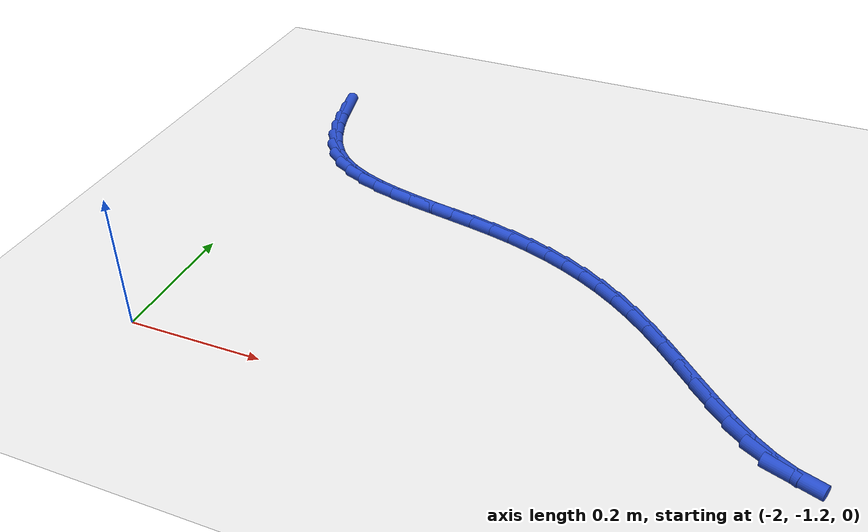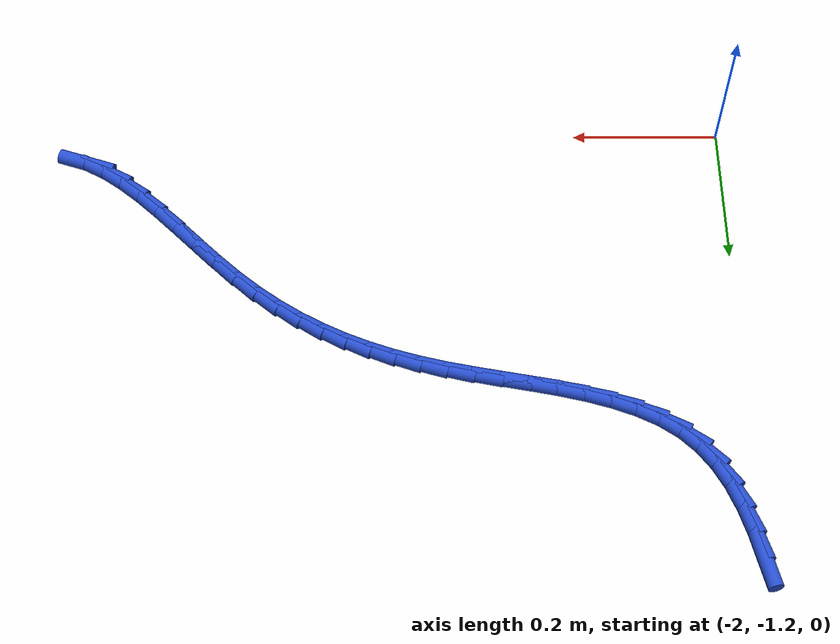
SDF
<sdf version="1.6">
 <world name="default">
  <model name="ground_plane">
   <static>1</static>
   <link name="link">
    <collision name="collision">
     <geometry><plane><normal>0 0 1</normal><size>100 100</size></plane></geometry>
     <surface><friction><ode><mu>100</mu><mu2>50</mu2></ode></friction></surface>
    </collision>
    <visual name="visual">
     <cast_shadows>0</cast_shadows>
     <geometry><plane><normal>0 0 1</normal><size>100 100</size></plane></geometry>
     <material>
      <script><uri>file://media/materials/scripts/gazebo.material</uri><name>Gazebo/WhiteGlow</name></script>
     </material>
    </visual>
   </link>
  </model>
  <model name="line">
   <link name="link_117">
    <pose>-1.997772447449501 -0.5537040835955556 0.01 0 1.57 -1.345155733256852</pose>
    <collision name="collision">
     <geometry><cylinder><radius>0.01</radius><length>0.08</length></cylinder></geometry>
    </collision>
    <visual name="visual">
     <material>
      <script><name>Gazebo/Blue</name><uri>file://media/materials/scripts/gazebo.material</uri></script>
     </material>
     <geometry><cylinder><radius>0.01</radius><length>0.08</length></cylinder></geometry>
    </visual>
   </link>
   <link name="link_118">
    <pose>-1.9897355834583756 -0.5887155290881961 0.01 0 1.57 -1.2807523820147915</pose>
    <collision name="collision">
     <geometry><cylinder><radius>0.01</radius><length>0.08</length></cylinder></geometry>
    </collision>
    <visual name="visual">
     <material>
      <script><name>Gazebo/Blue</name><uri>file://media/materials/scripts/gazebo.material</uri></script>
     </material>
     <geometry><cylinder><radius>0.01</radius><length>0.08</length></cylinder></geometry>
    </visual>
   </link>
   <link name="link_119">
    <pose>-1.979806153467671 -0.6219843373821023 0.01 0 1.57 -1.1946249049794326</pose>
    <collision name="collision">
     <geometry><cylinder><radius>0.01</radius><length>0.08</length></cylinder></geometry>
    </collision>
    <visual name="visual">
     <material>
      <script><name>Gazebo/Blue</name><uri>file://media/materials/scripts/gazebo.material</uri></script>
     </material>
     <geometry><cylinder><radius>0.01</radius><length>0.08</length></cylinder></geometry>
    </visual>
   </link>
   <link name="link_120">
    <pose>-1.9675458245919661 -0.6530247065206067 0.01 0 1.57 -1.0829772357372502</pose>
    <collision name="collision">
     <geometry><cylinder><radius>0.01</radius><length>0.08</length></cylinder></geometry>
    </collision>
    <visual name="visual">
     <material>
      <script><name>Gazebo/Blue</name><uri>file://media/materials/scripts/gazebo.material</uri></script>
     </material>
     <geometry><cylinder><radius>0.01</radius><length>0.08</length></cylinder></geometry>
    </visual>
   </link>
   <link name="link_121">
    <pose>-1.9525162639458398 -0.6813508345470413 0.01 0 1.57 -0.9429479836588368</pose>
    <collision name="collision">
     <geometry><cylinder><radius>0.01</radius><length>0.08</length></cylinder></geometry>
    </collision>
    <visual name="visual">
     <material>
      <script><name>Gazebo/Blue</name><uri>file://media/materials/scripts/gazebo.material</uri></script>
     </material>
     <geometry><cylinder><radius>0.01</radius><length>0.08</length></cylinder></geometry>
    </visual>
   </link>
   <link name="link_122">
    <pose>-1.9342791386438711 -0.7064769195047385 0.01 0 1.57 -0.7757064906332745</pose>
    <collision name="collision">
     <geometry><cylinder><radius>0.01</radius><length>0.08</length></cylinder></geometry>
    </collision>
    <visual name="visual">
     <material>
      <script><name>Gazebo/Blue</name><uri>file://media/materials/scripts/gazebo.material</uri></script>
     </material>
     <geometry><cylinder><radius>0.01</radius><length>0.08</length></cylinder></geometry>
    </visual>
   </link>
   <link name="link_123">
    <pose>-1.912407251873579 -0.7279289122649892 0.01 0 1.57 -0.6073591056954469</pose>
    <collision name="collision">
     <geometry><cylinder><radius>0.01</radius><length>0.08</length></cylinder></geometry>
    </collision>
    <visual name="visual">
     <material>
      <script><name>Gazebo/Blue</name><uri>file://media/materials/scripts/gazebo.material</uri></script>
     </material>
     <geometry><cylinder><radius>0.01</radius><length>0.08</length></cylinder></geometry>
    </visual>
   </link>
   <link name="link_124">
    <pose>-1.8868847722521176 -0.7456669119979239 0.01 0 1.57 -0.469266980880426</pose>
    <collision name="collision">
     <geometry><cylinder><radius>0.01</radius><length>0.08</length></cylinder></geometry>
    </collision>
    <visual name="visual">
     <material>
      <script><name>Gazebo/Blue</name><uri>file://media/materials/scripts/gazebo.material</uri></script>
     </material>
     <geometry><cylinder><radius>0.01</radius><length>0.08</length></cylinder></geometry>
    </visual>
   </link>
   <link name="link_125">
    <pose>-1.8582181038203802 -0.760202176538149 0.01 0 1.57 -0.363048559541694</pose>
    <collision name="collision">
     <geometry><cylinder><radius>0.01</radius><length>0.08</length></cylinder></geometry>
    </collision>
    <visual name="visual">
     <material>
      <script><name>Gazebo/Blue</name><uri>file://media/materials/scripts/gazebo.material</uri></script>
     </material>
     <geometry><cylinder><radius>0.01</radius><length>0.08</length></cylinder></geometry>
    </visual>
   </link>
   <link name="link_126">
    <pose>-1.8269473572872568 -0.772081537182493 0.01 0 1.57 -0.285111338385013</pose>
    <collision name="collision">
     <geometry><cylinder><radius>0.01</radius><length>0.08</length></cylinder></geometry>
    </collision>
    <visual name="visual">
     <material>
      <script><name>Gazebo/Blue</name><uri>file://media/materials/scripts/gazebo.material</uri></script>
     </material>
     <geometry><cylinder><radius>0.01</radius><length>0.08</length></cylinder></geometry>
    </visual>
   </link>
   <link name="link_127">
    <pose>-1.7936126433616373 -0.781851825227784 0.01 0 1.57 -0.231254574492611</pose>
    <collision name="collision">
     <geometry><cylinder><radius>0.01</radius><length>0.08</length></cylinder></geometry>
    </collision>
    <visual name="visual">
     <material>
      <script><name>Gazebo/Blue</name><uri>file://media/materials/scripts/gazebo.material</uri></script>
     </material>
     <geometry><cylinder><radius>0.01</radius><length>0.08</length></cylinder></geometry>
    </visual>
   </link>
   <link name="link_128">
    <pose>-1.7587540727524114 -0.79005987197085 0.01 0 1.57 -0.19804397375213975</pose>
    <collision name="collision">
     <geometry><cylinder><radius>0.01</radius><length>0.08</length></cylinder></geometry>
    </collision>
    <visual name="visual">
     <material>
      <script><name>Gazebo/Blue</name><uri>file://media/materials/scripts/gazebo.material</uri></script>
     </material>
     <geometry><cylinder><radius>0.01</radius><length>0.08</length></cylinder></geometry>
    </visual>
   </link>
   <link name="link_129">
    <pose>-1.7229117561684688 -0.7972525087085195 0.01 0 1.57 -0.18322904749051375</pose>
    <collision name="collision">
     <geometry><cylinder><radius>0.01</radius><length>0.08</length></cylinder></geometry>
    </collision>
    <visual name="visual">
     <material>
      <script><name>Gazebo/Blue</name><uri>file://media/materials/scripts/gazebo.material</uri></script>
     </material>
     <geometry><cylinder><radius>0.01</radius><length>0.08</length></cylinder></geometry>
    </visual>
   </link>
   <link name="link_130">
    <pose>-1.6866258043186997 -0.8039765667376207 0.01 0 1.57 -0.1857959369290433</pose>
    <collision name="collision">
     <geometry><cylinder><radius>0.01</radius><length>0.08</length></cylinder></geometry>
    </collision>
    <visual name="visual">
     <material>
      <script><name>Gazebo/Blue</name><uri>file://media/materials/scripts/gazebo.material</uri></script>
     </material>
     <geometry><cylinder><radius>0.01</radius><length>0.08</length></cylinder></geometry>
    </visual>
   </link>
   <link name="link_131">
    <pose>-1.650436327911994 -0.810778877354982 0.01 0 1.57 -0.20594908778024665</pose>
    <collision name="collision">
     <geometry><cylinder><radius>0.01</radius><length>0.08</length></cylinder></geometry>
    </collision>
    <visual name="visual">
     <material>
      <script><name>Gazebo/Blue</name><uri>file://media/materials/scripts/gazebo.material</uri></script>
     </material>
     <geometry><cylinder><radius>0.01</radius><length>0.08</length></cylinder></geometry>
    </visual>
   </link>
   <link name="link_132">
    <pose>-1.6148834376572425 -0.8182062718574317 0.01 0 1.57 -0.24378057751574592</pose>
    <collision name="collision">
     <geometry><cylinder><radius>0.01</radius><length>0.08</length></cylinder></geometry>
    </collision>
    <visual name="visual">
     <material>
      <script><name>Gazebo/Blue</name><uri>file://media/materials/scripts/gazebo.material</uri></script>
     </material>
     <geometry><cylinder><radius>0.01</radius><length>0.08</length></cylinder></geometry>
    </visual>
   </link>
   <link name="link_133">
    <pose>-1.5804511033791901 -0.826770537340912 0.01 0 1.57 -0.2910664446072185</pose>
    <collision name="collision">
     <geometry><cylinder><radius>0.01</radius><length>0.08</length></cylinder></geometry>
    </collision>
    <visual name="visual">
     <material>
      <script><name>Gazebo/Blue</name><uri>file://media/materials/scripts/gazebo.material</uri></script>
     </material>
     <geometry><cylinder><radius>0.01</radius><length>0.08</length></cylinder></geometry>
    </visual>
   </link>
   <link name="link_134">
    <pose>-1.5472135204057724 -0.8367276719161467 0.01 0 1.57 -0.3433093747219327</pose>
    <collision name="collision">
     <geometry><cylinder><radius>0.01</radius><length>0.08</length></cylinder></geometry>
    </collision>
    <visual name="visual">
     <material>
      <script><name>Gazebo/Blue</name><uri>file://media/materials/scripts/gazebo.material</uri></script>
     </material>
     <geometry><cylinder><radius>0.01</radius><length>0.08</length></cylinder></geometry>
    </visual>
   </link>
   <link name="link_135">
    <pose>-1.515063214777889 -0.848220272291535 0.01 0 1.57 -0.3997586393525326</pose>
    <collision name="collision">
     <geometry><cylinder><radius>0.01</radius><length>0.08</length></cylinder></geometry>
    </collision>
    <visual name="visual">
     <material>
      <script><name>Gazebo/Blue</name><uri>file://media/materials/scripts/gazebo.material</uri></script>
     </material>
     <geometry><cylinder><radius>0.01</radius><length>0.08</length></cylinder></geometry>
    </visual>
   </link>
   <link name="link_136">
    <pose>-1.483891897457081 -0.8613904263875352 0.01 0 1.57 -0.45940074743224285</pose>
    <collision name="collision">
     <geometry><cylinder><radius>0.01</radius><length>0.08</length></cylinder></geometry>
    </collision>
    <visual name="visual">
     <material>
      <script><name>Gazebo/Blue</name><uri>file://media/materials/scripts/gazebo.material</uri></script>
     </material>
     <geometry><cylinder><radius>0.01</radius><length>0.08</length></cylinder></geometry>
    </visual>
   </link>
   <link name="link_137">
    <pose>-1.4535912794048884 -0.8763802221246055 0.01 0 1.57 -0.5209956922992778</pose>
    <collision name="collision">
     <geometry><cylinder><radius>0.01</radius><length>0.08</length></cylinder></geometry>
    </collision>
    <visual name="visual">
     <material>
      <script><name>Gazebo/Blue</name><uri>file://media/materials/scripts/gazebo.material</uri></script>
     </material>
     <geometry><cylinder><radius>0.01</radius><length>0.08</length></cylinder></geometry>
    </visual>
   </link>
   <link name="link_138">
    <pose>-1.4240530715828528 -0.8933317474232049 0.01 0 1.57 -0.5831763288753182</pose>
    <collision name="collision">
     <geometry><cylinder><radius>0.01</radius><length>0.08</length></cylinder></geometry>
    </collision>
    <visual name="visual">
     <material>
      <script><name>Gazebo/Blue</name><uri>file://media/materials/scripts/gazebo.material</uri></script>
     </material>
     <geometry><cylinder><radius>0.01</radius><length>0.08</length></cylinder></geometry>
    </visual>
   </link>
   <link name="link_139">
    <pose>-1.3951689849525142 -0.9123870902037914 0.01 0 1.57 -0.644574293393759</pose>
    <collision name="collision">
     <geometry><cylinder><radius>0.01</radius><length>0.08</length></cylinder></geometry>
    </collision>
    <visual name="visual">
     <material>
      <script><name>Gazebo/Blue</name><uri>file://media/materials/scripts/gazebo.material</uri></script>
     </material>
     <geometry><cylinder><radius>0.01</radius><length>0.08</length></cylinder></geometry>
    </visual>
   </link>
   <link name="link_140">
    <pose>-1.3668307304754144 -0.9336883383868237 0.01 0 1.57 -0.7039129072110559</pose>
    <collision name="collision">
     <geometry><cylinder><radius>0.01</radius><length>0.08</length></cylinder></geometry>
    </collision>
    <visual name="visual">
     <material>
      <script><name>Gazebo/Blue</name><uri>file://media/materials/scripts/gazebo.material</uri></script>
     </material>
     <geometry><cylinder><radius>0.01</radius><length>0.08</length></cylinder></geometry>
    </visual>
   </link>
   <link name="link_141">
    <pose>-1.33893008911067 -0.957375967592386 0.01 0 1.57 -0.754302198008896</pose>
    <collision name="collision">
     <geometry><cylinder><radius>0.01</radius><length>0.08</length></cylinder></geometry>
    </collision>
    <visual name="visual">
     <material>
      <script><name>Gazebo/Blue</name><uri>file://media/materials/scripts/gazebo.material</uri></script>
     </material>
     <geometry><cylinder><radius>0.01</radius><length>0.08</length></cylinder></geometry>
    </visual>
   </link>
   <link name="link_142">
    <pose>-1.311372725916559 -0.9832706518211718 0.01 0 1.57 -0.784324899689411</pose>
    <collision name="collision">
     <geometry><cylinder><radius>0.01</radius><length>0.08</length></cylinder></geometry>
    </collision>
    <visual name="visual">
     <material>
      <script><name>Gazebo/Blue</name><uri>file://media/materials/scripts/gazebo.material</uri></script>
     </material>
     <geometry><cylinder><radius>0.01</radius><length>0.08</length></cylinder></geometry>
    </visual>
   </link>
   <link name="link_143">
    <pose>-1.284094826677087 -1.0104900610548158 0.01 0 1.57 -0.7947358933518811</pose>
    <collision name="collision">
     <geometry><cylinder><radius>0.01</radius><length>0.08</length></cylinder></geometry>
    </collision>
    <visual name="visual">
     <material>
      <script><name>Gazebo/Blue</name><uri>file://media/materials/scripts/gazebo.material</uri></script>
     </material>
     <geometry><cylinder><radius>0.01</radius><length>0.08</length></cylinder></geometry>
    </visual>
   </link>
   <link name="link_144">
    <pose>-1.2570366369902202 -1.0380583529004939 0.01 0 1.57 -0.7861986438267857</pose>
    <collision name="collision">
     <geometry><cylinder><radius>0.01</radius><length>0.08</length></cylinder></geometry>
    </collision>
    <visual name="visual">
     <material>
      <script><name>Gazebo/Blue</name><uri>file://media/materials/scripts/gazebo.material</uri></script>
     </material>
     <geometry><cylinder><radius>0.01</radius><length>0.08</length></cylinder></geometry>
    </visual>
   </link>
   <link name="link_145">
    <pose>-1.2301384024539261 -1.0649996849653813 0.01 0 1.57 -0.7574116080359113</pose>
    <collision name="collision">
     <geometry><cylinder><radius>0.01</radius><length>0.08</length></cylinder></geometry>
    </collision>
    <visual name="visual">
     <material>
      <script><name>Gazebo/Blue</name><uri>file://media/materials/scripts/gazebo.material</uri></script>
     </material>
     <geometry><cylinder><radius>0.01</radius><length>0.08</length></cylinder></geometry>
    </visual>
   </link>
   <link name="link_146">
    <pose>-1.2033403686661717 -1.0903382148566543 0.01 0 1.57 -0.7048397213529886</pose>
    <collision name="collision">
     <geometry><cylinder><radius>0.01</radius><length>0.08</length></cylinder></geometry>
    </collision>
    <visual name="visual">
     <material>
      <script><name>Gazebo/Blue</name><uri>file://media/materials/scripts/gazebo.material</uri></script>
     </material>
     <geometry><cylinder><radius>0.01</radius><length>0.08</length></cylinder></geometry>
    </visual>
   </link>
   <link name="link_147">
    <pose>-1.1765827812249239 -1.1130981001814881 0.01 0 1.57 -0.6222014372441704</pose>
    <collision name="collision">
     <geometry><cylinder><radius>0.01</radius><length>0.08</length></cylinder></geometry>
    </collision>
    <visual name="visual">
     <material>
      <script><name>Gazebo/Blue</name><uri>file://media/materials/scripts/gazebo.material</uri></script>
     </material>
     <geometry><cylinder><radius>0.01</radius><length>0.08</length></cylinder></geometry>
    </visual>
   </link>
   <link name="link_148">
    <pose>-1.1498058857281508 -1.1323034985470586 0.01 0 1.57 -0.5001030114258783</pose>
    <collision name="collision">
     <geometry><cylinder><radius>0.01</radius><length>0.08</length></cylinder></geometry>
    </collision>
    <visual name="visual">
     <material>
      <script><name>Gazebo/Blue</name><uri>file://media/materials/scripts/gazebo.material</uri></script>
     </material>
     <geometry><cylinder><radius>0.01</radius><length>0.08</length></cylinder></geometry>
    </visual>
   </link>
   <link name="link_149">
    <pose>-1.1229499277738184 -1.1469785675605413 0.01 0 1.57 -0.32742879284730925</pose>
    <collision name="collision">
     <geometry><cylinder><radius>0.01</radius><length>0.08</length></cylinder></geometry>
    </collision>
    <visual name="visual">
     <material>
      <script><name>Gazebo/Blue</name><uri>file://media/materials/scripts/gazebo.material</uri></script>
     </material>
     <geometry><cylinder><radius>0.01</radius><length>0.08</length></cylinder></geometry>
    </visual>
   </link>
  </model>
 </world>
</sdf>
